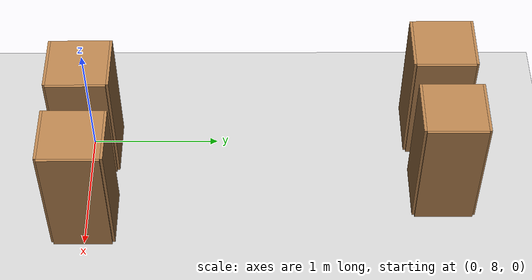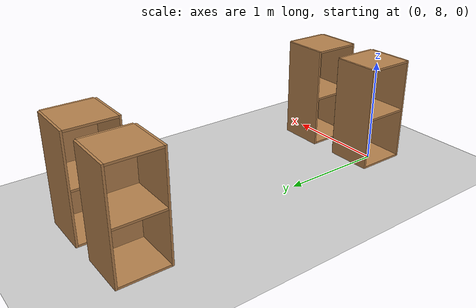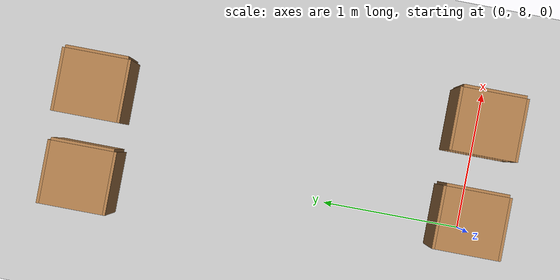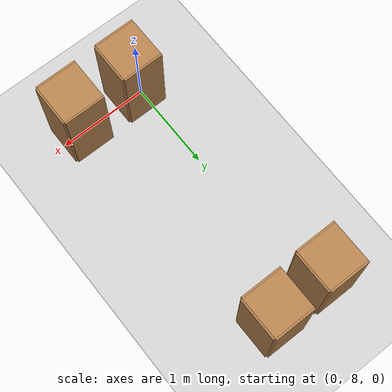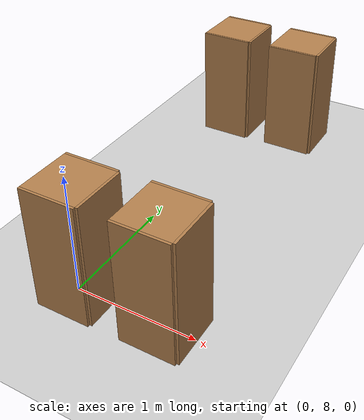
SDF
<sdf version="1.6">
 <world name="default">
  <model name="ground_plane">
   <static>1</static>
   <link name="link">
    <collision name="collision">
     <geometry><plane><normal>0 0 1</normal><size>100 100</size></plane></geometry>
     <surface><friction><ode><mu>100</mu><mu2>50</mu2></ode></friction></surface>
    </collision>
    <visual name="visual">
     <cast_shadows>0</cast_shadows>
     <geometry><plane><normal>0 0 1</normal><size>100 100</size></plane></geometry>
     <material>
      <script><uri>file://media/materials/scripts/gazebo.material</uri><name>Gazebo/Grey</name></script>
     </material>
    </visual>
   </link>
  </model>
  <model name="cabinet">
   <static>1</static>
   <link name="cabinet_bottom_plate">
    <inertial>
     <pose>0 0 -1 0 -0 0</pose>
     <inertia><ixx>2.05</ixx><ixy>0</ixy><ixz>0</ixz><iyy>2.05</iyy><iyz>0</iyz><izz>2.05</izz></inertia>
     <mass>25</mass>
    </inertial>
    <collision name="cabinet_bottom_plate_geom">
     <pose>0 0 0.01 0 -0 0</pose>
     <geometry><box><size>0.45 0.45 0.02</size></box></geometry>
    </collision>
    <visual name="cabinet_bottom_plate_geom_visual">
     <pose>0 0 0.01 0 -0 0</pose>
     <geometry><box><size>0.45 0.45 0.02</size></box></geometry>
     <material>
      <script><uri>file://media/materials/scripts/gazebo.material</uri><name>Gazebo/Wood</name></script>
     </material>
    </visual>
    <collision name="cabinet_bottom_plate_geom_cabinet_back_plate">
     <pose>0.235 0 0.51 0 -0 0</pose>
     <geometry><box><size>0.02 0.45 1.02</size></box></geometry>
    </collision>
    <visual name="cabinet_bottom_plate_geom_cabinet_back_plate_visual">
     <pose>0.235 0 0.51 0 -0 0</pose>
     <geometry><box><size>0.02 0.45 1.02</size></box></geometry>
     <material>
      <script><uri>file://media/materials/scripts/gazebo.material</uri><name>Gazebo/Wood</name></script>
     </material>
    </visual>
    <collision name="cabinet_bottom_plate_geom_cabinet_left_plate">
     <pose>0 0.235 0.51 0 -0 0</pose>
     <geometry><box><size>0.45 0.02 1.02</size></box></geometry>
    </collision>
    <visual name="cabinet_bottom_plate_geom_cabinet_left_plate_visual">
     <pose>0 0.235 0.51 0 -0 0</pose>
     <geometry><box><size>0.45 0.02 1.02</size></box></geometry>
     <material>
      <script><uri>file://media/materials/scripts/gazebo.material</uri><name>Gazebo/Wood</name></script>
     </material>
    </visual>
    <collision name="cabinet_bottom_plate_geom_cabinet_middle_plate">
     <pose>0 0 0.51 0 -0 0</pose>
     <geometry><box><size>0.45 0.45 0.02</size></box></geometry>
    </collision>
    <visual name="cabinet_bottom_plate_geom_cabinet_middle_plate_visual">
     <pose>0 0 0.51 0 -0 0</pose>
     <geometry><box><size>0.45 0.45 0.02</size></box></geometry>
     <material>
      <script><uri>file://media/materials/scripts/gazebo.material</uri><name>Gazebo/Wood</name></script>
     </material>
    </visual>
    <collision name="cabinet_bottom_plate_geom_cabinet_right_plate">
     <pose>0 -0.235 0.51 0 -0 0</pose>
     <geometry><box><size>0.45 0.02 1.02</size></box></geometry>
    </collision>
    <visual name="cabinet_bottom_plate_geom_cabinet_right_plate_visual">
     <pose>0 -0.235 0.51 0 -0 0</pose>
     <geometry><box><size>0.45 0.02 1.02</size></box></geometry>
     <material>
      <script><uri>file://media/materials/scripts/gazebo.material</uri><name>Gazebo/Wood</name></script>
     </material>
    </visual>
    <collision name="cabinet_bottom_plate_geom_cabinet_top_plate">
     <pose>0 0 1.01 0 -0 0</pose>
     <geometry><box><size>0.45 0.45 0.02</size></box></geometry>
    </collision>
    <visual name="cabinet_bottom_plate_geom_cabinet_top_plate_visual">
     <pose>0 0 1.01 0 -0 0</pose>
     <geometry><box><size>0.45 0.45 0.02</size></box></geometry>
     <material>
      <script><uri>file://media/materials/scripts/gazebo.material</uri><name>Gazebo/Wood</name></script>
     </material>
    </visual>
   </link>
   <pose>-0.133695 10.7508 0 0 -0 0</pose>
  </model>
  <model name="cabinet_clone">
   <static>1</static>
   <link name="cabinet_bottom_plate">
    <inertial>
     <pose>0 0 -1 0 -0 0</pose>
     <inertia><ixx>2.05</ixx><ixy>0</ixy><ixz>0</ixz><iyy>2.05</iyy><iyz>0</iyz><izz>2.05</izz></inertia>
     <mass>25</mass>
    </inertial>
    <collision name="cabinet_bottom_plate_geom">
     <pose>0 0 0.01 0 -0 0</pose>
     <geometry><box><size>0.45 0.45 0.02</size></box></geometry>
    </collision>
    <visual name="cabinet_bottom_plate_geom_visual">
     <pose>0 0 0.01 0 -0 0</pose>
     <geometry><box><size>0.45 0.45 0.02</size></box></geometry>
     <material>
      <script><uri>file://media/materials/scripts/gazebo.material</uri><name>Gazebo/Wood</name></script>
     </material>
    </visual>
    <collision name="cabinet_bottom_plate_geom_cabinet_back_plate">
     <pose>0.235 0 0.51 0 -0 0</pose>
     <geometry><box><size>0.02 0.45 1.02</size></box></geometry>
    </collision>
    <visual name="cabinet_bottom_plate_geom_cabinet_back_plate_visual">
     <pose>0.235 0 0.51 0 -0 0</pose>
     <geometry><box><size>0.02 0.45 1.02</size></box></geometry>
     <material>
      <script><uri>file://media/materials/scripts/gazebo.material</uri><name>Gazebo/Wood</name></script>
     </material>
    </visual>
    <collision name="cabinet_bottom_plate_geom_cabinet_left_plate">
     <pose>0 0.235 0.51 0 -0 0</pose>
     <geometry><box><size>0.45 0.02 1.02</size></box></geometry>
    </collision>
    <visual name="cabinet_bottom_plate_geom_cabinet_left_plate_visual">
     <pose>0 0.235 0.51 0 -0 0</pose>
     <geometry><box><size>0.45 0.02 1.02</size></box></geometry>
     <material>
      <script><uri>file://media/materials/scripts/gazebo.material</uri><name>Gazebo/Wood</name></script>
     </material>
    </visual>
    <collision name="cabinet_bottom_plate_geom_cabinet_middle_plate">
     <pose>0 0 0.51 0 -0 0</pose>
     <geometry><box><size>0.45 0.45 0.02</size></box></geometry>
    </collision>
    <visual name="cabinet_bottom_plate_geom_cabinet_middle_plate_visual">
     <pose>0 0 0.51 0 -0 0</pose>
     <geometry><box><size>0.45 0.45 0.02</size></box></geometry>
     <material>
      <script><uri>file://media/materials/scripts/gazebo.material</uri><name>Gazebo/Wood</name></script>
     </material>
    </visual>
    <collision name="cabinet_bottom_plate_geom_cabinet_right_plate">
     <pose>0 -0.235 0.51 0 -0 0</pose>
     <geometry><box><size>0.45 0.02 1.02</size></box></geometry>
    </collision>
    <visual name="cabinet_bottom_plate_geom_cabinet_right_plate_visual">
     <pose>0 -0.235 0.51 0 -0 0</pose>
     <geometry><box><size>0.45 0.02 1.02</size></box></geometry>
     <material>
      <script><uri>file://media/materials/scripts/gazebo.material</uri><name>Gazebo/Wood</name></script>
     </material>
    </visual>
    <collision name="cabinet_bottom_plate_geom_cabinet_top_plate">
     <pose>0 0 1.01 0 -0 0</pose>
     <geometry><box><size>0.45 0.45 0.02</size></box></geometry>
    </collision>
    <visual name="cabinet_bottom_plate_geom_cabinet_top_plate_visual">
     <pose>0 0 1.01 0 -0 0</pose>
     <geometry><box><size>0.45 0.45 0.02</size></box></geometry>
     <material>
      <script><uri>file://media/materials/scripts/gazebo.material</uri><name>Gazebo/Wood</name></script>
     </material>
    </visual>
   </link>
   <pose>0.518667 10.7725 0 0 -0 0</pose>
  </model>
  <model name="cabinet_clone_1">
   <static>1</static>
   <link name="cabinet_bottom_plate">
    <inertial>
     <pose>0 0 -1 0 -0 0</pose>
     <inertia><ixx>2.05</ixx><ixy>0</ixy><ixz>0</ixz><iyy>2.05</iyy><iyz>0</iyz><izz>2.05</izz></inertia>
     <mass>25</mass>
    </inertial>
    <collision name="cabinet_bottom_plate_geom">
     <pose>0 0 0.01 0 -0 0</pose>
     <geometry><box><size>0.45 0.45 0.02</size></box></geometry>
    </collision>
    <visual name="cabinet_bottom_plate_geom_visual">
     <pose>0 0 0.01 0 -0 0</pose>
     <geometry><box><size>0.45 0.45 0.02</size></box></geometry>
     <material>
      <script><uri>file://media/materials/scripts/gazebo.material</uri><name>Gazebo/Wood</name></script>
     </material>
    </visual>
    <collision name="cabinet_bottom_plate_geom_cabinet_back_plate">
     <pose>0.235 0 0.51 0 -0 0</pose>
     <geometry><box><size>0.02 0.45 1.02</size></box></geometry>
    </collision>
    <visual name="cabinet_bottom_plate_geom_cabinet_back_plate_visual">
     <pose>0.235 0 0.51 0 -0 0</pose>
     <geometry><box><size>0.02 0.45 1.02</size></box></geometry>
     <material>
      <script><uri>file://media/materials/scripts/gazebo.material</uri><name>Gazebo/Wood</name></script>
     </material>
    </visual>
    <collision name="cabinet_bottom_plate_geom_cabinet_left_plate">
     <pose>0 0.235 0.51 0 -0 0</pose>
     <geometry><box><size>0.45 0.02 1.02</size></box></geometry>
    </collision>
    <visual name="cabinet_bottom_plate_geom_cabinet_left_plate_visual">
     <pose>0 0.235 0.51 0 -0 0</pose>
     <geometry><box><size>0.45 0.02 1.02</size></box></geometry>
     <material>
      <script><uri>file://media/materials/scripts/gazebo.material</uri><name>Gazebo/Wood</name></script>
     </material>
    </visual>
    <collision name="cabinet_bottom_plate_geom_cabinet_middle_plate">
     <pose>0 0 0.51 0 -0 0</pose>
     <geometry><box><size>0.45 0.45 0.02</size></box></geometry>
    </collision>
    <visual name="cabinet_bottom_plate_geom_cabinet_middle_plate_visual">
     <pose>0 0 0.51 0 -0 0</pose>
     <geometry><box><size>0.45 0.45 0.02</size></box></geometry>
     <material>
      <script><uri>file://media/materials/scripts/gazebo.material</uri><name>Gazebo/Wood</name></script>
     </material>
    </visual>
    <collision name="cabinet_bottom_plate_geom_cabinet_right_plate">
     <pose>0 -0.235 0.51 0 -0 0</pose>
     <geometry><box><size>0.45 0.02 1.02</size></box></geometry>
    </collision>
    <visual name="cabinet_bottom_plate_geom_cabinet_right_plate_visual">
     <pose>0 -0.235 0.51 0 -0 0</pose>
     <geometry><box><size>0.45 0.02 1.02</size></box></geometry>
     <material>
      <script><uri>file://media/materials/scripts/gazebo.material</uri><name>Gazebo/Wood</name></script>
     </material>
    </visual>
    <collision name="cabinet_bottom_plate_geom_cabinet_top_plate">
     <pose>0 0 1.01 0 -0 0</pose>
     <geometry><box><size>0.45 0.45 0.02</size></box></geometry>
    </collision>
    <visual name="cabinet_bottom_plate_geom_cabinet_top_plate_visual">
     <pose>0 0 1.01 0 -0 0</pose>
     <geometry><box><size>0.45 0.45 0.02</size></box></geometry>
     <material>
      <script><uri>file://media/materials/scripts/gazebo.material</uri><name>Gazebo/Wood</name></script>
     </material>
    </visual>
   </link>
   <pose>0.065893 7.98037 0 0 -0 0</pose>
  </model>
  <model name="cabinet_clone_2">
   <static>1</static>
   <link name="cabinet_bottom_plate">
    <inertial>
     <pose>0 0 -1 0 -0 0</pose>
     <inertia><ixx>2.05</ixx><ixy>0</ixy><ixz>0</ixz><iyy>2.05</iyy><iyz>0</iyz><izz>2.05</izz></inertia>
     <mass>25</mass>
    </inertial>
    <collision name="cabinet_bottom_plate_geom">
     <pose>0 0 0.01 0 -0 0</pose>
     <geometry><box><size>0.45 0.45 0.02</size></box></geometry>
    </collision>
    <visual name="cabinet_bottom_plate_geom_visual">
     <pose>0 0 0.01 0 -0 0</pose>
     <geometry><box><size>0.45 0.45 0.02</size></box></geometry>
     <material>
      <script><uri>file://media/materials/scripts/gazebo.material</uri><name>Gazebo/Wood</name></script>
     </material>
    </visual>
    <collision name="cabinet_bottom_plate_geom_cabinet_back_plate">
     <pose>0.235 0 0.51 0 -0 0</pose>
     <geometry><box><size>0.02 0.45 1.02</size></box></geometry>
    </collision>
    <visual name="cabinet_bottom_plate_geom_cabinet_back_plate_visual">
     <pose>0.235 0 0.51 0 -0 0</pose>
     <geometry><box><size>0.02 0.45 1.02</size></box></geometry>
     <material>
      <script><uri>file://media/materials/scripts/gazebo.material</uri><name>Gazebo/Wood</name></script>
     </material>
    </visual>
    <collision name="cabinet_bottom_plate_geom_cabinet_left_plate">
     <pose>0 0.235 0.51 0 -0 0</pose>
     <geometry><box><size>0.45 0.02 1.02</size></box></geometry>
    </collision>
    <visual name="cabinet_bottom_plate_geom_cabinet_left_plate_visual">
     <pose>0 0.235 0.51 0 -0 0</pose>
     <geometry><box><size>0.45 0.02 1.02</size></box></geometry>
     <material>
      <script><uri>file://media/materials/scripts/gazebo.material</uri><name>Gazebo/Wood</name></script>
     </material>
    </visual>
    <collision name="cabinet_bottom_plate_geom_cabinet_middle_plate">
     <pose>0 0 0.51 0 -0 0</pose>
     <geometry><box><size>0.45 0.45 0.02</size></box></geometry>
    </collision>
    <visual name="cabinet_bottom_plate_geom_cabinet_middle_plate_visual">
     <pose>0 0 0.51 0 -0 0</pose>
     <geometry><box><size>0.45 0.45 0.02</size></box></geometry>
     <material>
      <script><uri>file://media/materials/scripts/gazebo.material</uri><name>Gazebo/Wood</name></script>
     </material>
    </visual>
    <collision name="cabinet_bottom_plate_geom_cabinet_right_plate">
     <pose>0 -0.235 0.51 0 -0 0</pose>
     <geometry><box><size>0.45 0.02 1.02</size></box></geometry>
    </collision>
    <visual name="cabinet_bottom_plate_geom_cabinet_right_plate_visual">
     <pose>0 -0.235 0.51 0 -0 0</pose>
     <geometry><box><size>0.45 0.02 1.02</size></box></geometry>
     <material>
      <script><uri>file://media/materials/scripts/gazebo.material</uri><name>Gazebo/Wood</name></script>
     </material>
    </visual>
    <collision name="cabinet_bottom_plate_geom_cabinet_top_plate">
     <pose>0 0 1.01 0 -0 0</pose>
     <geometry><box><size>0.45 0.45 0.02</size></box></geometry>
    </collision>
    <visual name="cabinet_bottom_plate_geom_cabinet_top_plate_visual">
     <pose>0 0 1.01 0 -0 0</pose>
     <geometry><box><size>0.45 0.45 0.02</size></box></geometry>
     <material>
      <script><uri>file://media/materials/scripts/gazebo.material</uri><name>Gazebo/Wood</name></script>
     </material>
    </visual>
   </link>
   <pose>0.766564 7.9919 0 0 -0 0</pose>
  </model>
 </world>
</sdf>
